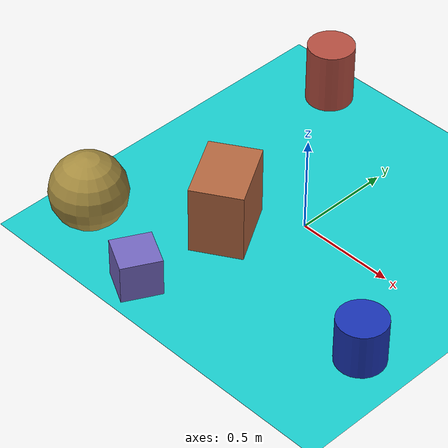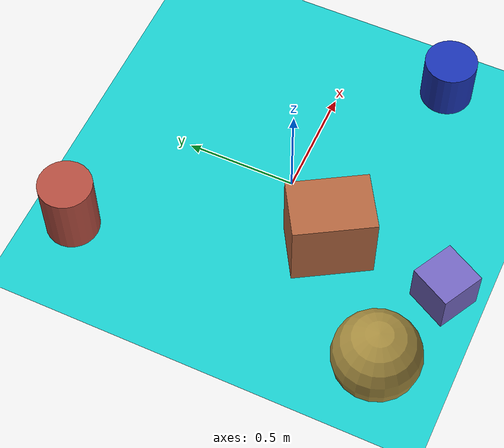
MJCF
<mujoco>
   <asset>
<texture type="skybox" builtin="gradient" rgb1="0.1 0.7 0.5" rgb2="0.2 0.8 0.8" width="256" height="256"/>
<texture name="gradient_0" builtin="gradient" rgb1="0.5 0.0 0.7" rgb2="0.4 0.8 0.8" width="200" height="200"/>
<texture name="gradient_1" builtin="gradient" rgb1="0.6 0.2 0.4" rgb2="0.7 0.9 0.1" width="200" height="200"/>
<texture name="checker_2" builtin="checker" rgb1="0.6 0.4 0.4" rgb2="0.8 0.2 0.1" width="200" height="200"/>
<texture name="checker_3" builtin="checker" rgb1="0.2 0.1 0.7" rgb2="0.0 0.3 0.7" width="200" height="200"/>
<texture name="gradient_4" builtin="gradient" rgb1="0.6 0.1 0.2" rgb2="0.8 0.7 0.3" width="200" height="200"/><material name="gradient_0_mat" reflectance="0" texture="gradient_0" texuniform="true"/>
<material name="gradient_1_mat" reflectance="0" texture="gradient_1" texuniform="true"/>
<material name="checker_2_mat" reflectance="0" texrepeat="4 4" texture="checker_2" texuniform="false" />
<material name="checker_3_mat" reflectance="0" texrepeat="7 7" texture="checker_3" texuniform="false" />
<material name="gradient_4_mat" reflectance="0" texture="gradient_4" texuniform="true"/>
   </asset>

   <worldbody>
      <light diffuse=".9 .9 .9" pos="0 0 3" dir="0 0 -1"/>
     <geom type="plane" size="1 1 0.1" rgba="0.1 0.8 0.8 1"/>
<geom type="box" pos="-0.26 -0.82 0.1" size="0.1 0.1 0.1" material="gradient_0_mat" euler="0 0 62" />
<geom type="sphere" pos="-0.72 -0.69 0.19" size="0.19 0.19 0.19" material="gradient_1_mat" euler="0 0 49" />
<geom type="cylinder" pos="-0.59 0.79 0.16" size="0.12 0.16 0.16" material="checker_2_mat" euler="0 0 32" />
<geom type="cylinder" pos="0.76 -0.45 0.12" size="0.12 0.12 0.12" material="checker_3_mat" euler="0 0 52" />
<geom type="box" pos="-0.24 -0.28 0.18" size="0.13 0.18 0.18" material="gradient_4_mat" euler="0 0 31" /><camera euler="60 0 180" fovy="60" name="camera1" pos="-0.2 -1.5 1"></camera>   </worldbody>
</mujoco>
